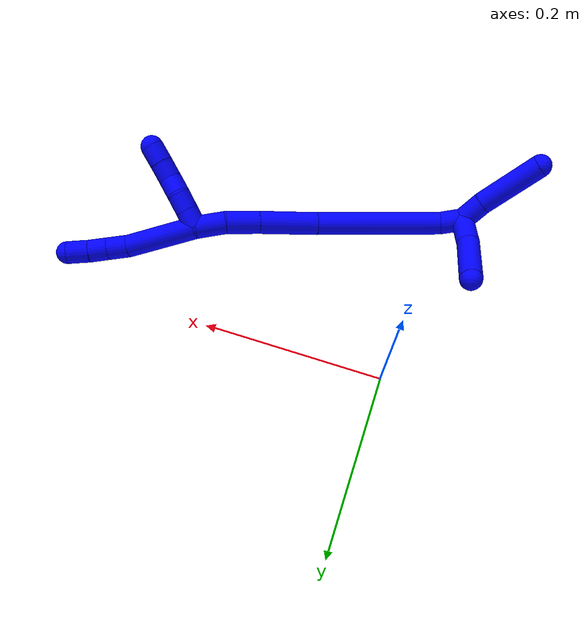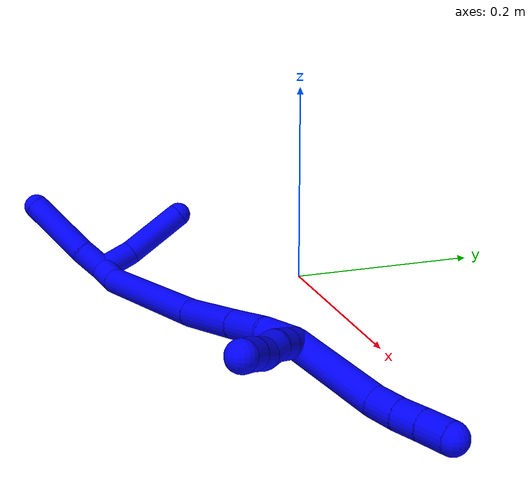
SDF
<sdf version="1.7">
 <world name="default">
  <model name="1">
   <static>0</static>
   <link name="1">
    <collision name="collision-cylinder-e_1_2_8">
     <pose>0.038566 0.002872 -0.012225 -2.91083 1.256 -2.82502</pose>
     <geometry><cylinder><radius>0.0125</radius><length>0.081119</length></cylinder></geometry>
     <surface>
      <friction><ode><mu>1.16</mu><mu2>1.16</mu2><slip1>0</slip1><slip2>0</slip2></ode></friction>
      <contact><ode><kp>1e+06</kp><kd>1</kd><max_vel>0</max_vel><min_depth>0.001</min_depth></ode></contact>
     </surface>
    </collision>
    <visual name="visual-cylinder-e_1_2_8">
     <pose>0.038566 0.002872 -0.012225 -2.91083 1.256 -2.82502</pose>
     <geometry><cylinder><radius>0.0125</radius><length>0.081119</length></cylinder></geometry>
     <material><ambient>0 0 1 1</ambient></material>
    </visual>
    <collision name="collision-cylinder-e_2_8_9">
     <pose>0.088056 0.008821 -0.027227 -2.30505 1.2082 -1.99724</pose>
     <geometry><cylinder><radius>0.0125</radius><length>0.023365</length></cylinder></geometry>
     <surface>
      <friction><ode><mu>1.16</mu><mu2>1.16</mu2><slip1>0</slip1><slip2>0</slip2></ode></friction>
      <contact><ode><kp>1e+06</kp><kd>1</kd><max_vel>0</max_vel><min_depth>0.001</min_depth></ode></contact>
     </surface>
    </collision>
    <visual name="visual-cylinder-e_2_8_9">
     <pose>0.088056 0.008821 -0.027227 -2.30505 1.2082 -1.99724</pose>
     <geometry><cylinder><radius>0.0125</radius><length>0.023365</length></cylinder></geometry>
     <material><ambient>0 0 1 1</ambient></material>
    </visual>
    <collision name="collision-cylinder-e_3_9_10">
     <pose>0.108628 0.01535 -0.032841 -2.25848 1.13703 -1.86763</pose>
     <geometry><cylinder><radius>0.0125</radius><length>0.021269</length></cylinder></geometry>
     <surface>
      <friction><ode><mu>1.16</mu><mu2>1.16</mu2><slip1>0</slip1><slip2>0</slip2></ode></friction>
      <contact><ode><kp>1e+06</kp><kd>1</kd><max_vel>0</max_vel><min_depth>0.001</min_depth></ode></contact>
     </surface>
    </collision>
    <visual name="visual-cylinder-e_3_9_10">
     <pose>0.108628 0.01535 -0.032841 -2.25848 1.13703 -1.86763</pose>
     <geometry><cylinder><radius>0.0125</radius><length>0.021269</length></cylinder></geometry>
     <material><ambient>0 0 1 1</ambient></material>
    </visual>
    <collision name="collision-cylinder-e_4_10_6">
     <pose>0.12939 0.022991 -0.038119 -2.09857 1.15953 -1.70118</pose>
     <geometry><cylinder><radius>0.0125</radius><length>0.024247</length></cylinder></geometry>
     <surface>
      <friction><ode><mu>1.16</mu><mu2>1.16</mu2><slip1>0</slip1><slip2>0</slip2></ode></friction>
      <contact><ode><kp>1e+06</kp><kd>1</kd><max_vel>0</max_vel><min_depth>0.001</min_depth></ode></contact>
     </surface>
    </collision>
    <visual name="visual-cylinder-e_4_10_6">
     <pose>0.12939 0.022991 -0.038119 -2.09857 1.15953 -1.70118</pose>
     <geometry><cylinder><radius>0.0125</radius><length>0.024247</length></cylinder></geometry>
     <material><ambient>0 0 1 1</ambient></material>
    </visual>
    <collision name="collision-cylinder-e_1_2_11">
     <pose>0.004496 0.004141 0.007915 -0.48203 0.466315 -0.116608</pose>
     <geometry><cylinder><radius>0.0125</radius><length>0.02</length></cylinder></geometry>
     <surface>
      <friction><ode><mu>1.16</mu><mu2>1.16</mu2><slip1>0</slip1><slip2>0</slip2></ode></friction>
      <contact><ode><kp>1e+06</kp><kd>1</kd><max_vel>0</max_vel><min_depth>0.001</min_depth></ode></contact>
     </surface>
    </collision>
    <visual name="visual-cylinder-e_1_2_11">
     <pose>0.004496 0.004141 0.007915 -0.48203 0.466315 -0.116608</pose>
     <geometry><cylinder><radius>0.0125</radius><length>0.02</length></cylinder></geometry>
     <material><ambient>0 0 1 1</ambient></material>
    </visual>
    <collision name="collision-cylinder-e_2_11_12">
     <pose>0.013501 0.012445 0.023724 -0.485265 0.467814 -0.11781</pose>
     <geometry><cylinder><radius>0.0125</radius><length>0.02</length></cylinder></geometry>
     <surface>
      <friction><ode><mu>1.16</mu><mu2>1.16</mu2><slip1>0</slip1><slip2>0</slip2></ode></friction>
      <contact><ode><kp>1e+06</kp><kd>1</kd><max_vel>0</max_vel><min_depth>0.001</min_depth></ode></contact>
     </surface>
    </collision>
    <visual name="visual-cylinder-e_2_11_12">
     <pose>0.013501 0.012445 0.023724 -0.485265 0.467814 -0.11781</pose>
     <geometry><cylinder><radius>0.0125</radius><length>0.02</length></cylinder></geometry>
     <material><ambient>0 0 1 1</ambient></material>
    </visual>
    <collision name="collision-cylinder-e_3_12_13">
     <pose>0.023566 0.01838 0.039744 -0.214751 0.588948 -0.06536</pose>
     <geometry><cylinder><radius>0.0125</radius><length>0.02</length></cylinder></geometry>
     <surface>
      <friction><ode><mu>1.16</mu><mu2>1.16</mu2><slip1>0</slip1><slip2>0</slip2></ode></friction>
      <contact><ode><kp>1e+06</kp><kd>1</kd><max_vel>0</max_vel><min_depth>0.001</min_depth></ode></contact>
     </surface>
    </collision>
    <visual name="visual-cylinder-e_3_12_13">
     <pose>0.023566 0.01838 0.039744 -0.214751 0.588948 -0.06536</pose>
     <geometry><cylinder><radius>0.0125</radius><length>0.02</length></cylinder></geometry>
     <material><ambient>0 0 1 1</ambient></material>
    </visual>
    <collision name="collision-cylinder-e_4_13_14">
     <pose>0.033601 0.024851 0.055473 -0.553454 0.464604 -0.134178</pose>
     <geometry><cylinder><radius>0.0125</radius><length>0.02</length></cylinder></geometry>
     <surface>
      <friction><ode><mu>1.16</mu><mu2>1.16</mu2><slip1>0</slip1><slip2>0</slip2></ode></friction>
      <contact><ode><kp>1e+06</kp><kd>1</kd><max_vel>0</max_vel><min_depth>0.001</min_depth></ode></contact>
     </surface>
    </collision>
    <visual name="visual-cylinder-e_4_13_14">
     <pose>0.033601 0.024851 0.055473 -0.553454 0.464604 -0.134178</pose>
     <geometry><cylinder><radius>0.0125</radius><length>0.02</length></cylinder></geometry>
     <material><ambient>0 0 1 1</ambient></material>
    </visual>
    <collision name="collision-cylinder-e_5_14_5">
     <pose>0.042974 0.033695 0.070752 -0.495225 0.511228 -0.131937</pose>
     <geometry><cylinder><radius>0.0125</radius><length>0.02</length></cylinder></geometry>
     <surface>
      <friction><ode><mu>1.16</mu><mu2>1.16</mu2><slip1>0</slip1><slip2>0</slip2></ode></friction>
      <contact><ode><kp>1e+06</kp><kd>1</kd><max_vel>0</max_vel><min_depth>0.001</min_depth></ode></contact>
     </surface>
    </collision>
    <visual name="visual-cylinder-e_5_14_5">
     <pose>0.042974 0.033695 0.070752 -0.495225 0.511228 -0.131937</pose>
     <geometry><cylinder><radius>0.0125</radius><length>0.02</length></cylinder></geometry>
     <material><ambient>0 0 1 1</ambient></material>
    </visual>
    <collision name="collision-cylinder-e_1_2_15">
     <pose>-0.014877 -0.005654 0.005049 0.84189 -1.09956 -0.535532</pose>
     <geometry><cylinder><radius>0.0125</radius><length>0.033394</length></cylinder></geometry>
     <surface>
      <friction><ode><mu>1.16</mu><mu2>1.16</mu2><slip1>0</slip1><slip2>0</slip2></ode></friction>
      <contact><ode><kp>1e+06</kp><kd>1</kd><max_vel>0</max_vel><min_depth>0.001</min_depth></ode></contact>
     </surface>
    </collision>
    <visual name="visual-cylinder-e_1_2_15">
     <pose>-0.014877 -0.005654 0.005049 0.84189 -1.09956 -0.535532</pose>
     <geometry><cylinder><radius>0.0125</radius><length>0.033394</length></cylinder></geometry>
     <material><ambient>0 0 1 1</ambient></material>
    </visual>
    <collision name="collision-cylinder-e_2_15_16">
     <pose>-0.045856 -0.020076 0.013594 1.1914 -1.04058 -0.740881</pose>
     <geometry><cylinder><radius>0.0125</radius><length>0.03733</length></cylinder></geometry>
     <surface>
      <friction><ode><mu>1.16</mu><mu2>1.16</mu2><slip1>0</slip1><slip2>0</slip2></ode></friction>
      <contact><ode><kp>1e+06</kp><kd>1</kd><max_vel>0</max_vel><min_depth>0.001</min_depth></ode></contact>
     </surface>
    </collision>
    <visual name="visual-cylinder-e_2_15_16">
     <pose>-0.045856 -0.020076 0.013594 1.1914 -1.04058 -0.740881</pose>
     <geometry><cylinder><radius>0.0125</radius><length>0.03733</length></cylinder></geometry>
     <material><ambient>0 0 1 1</ambient></material>
    </visual>
    <collision name="collision-cylinder-e_3_16_17">
     <pose>-0.090257 -0.043986 0.022244 1.2427 -1.05634 -0.791394</pose>
     <geometry><cylinder><radius>0.0125</radius><length>0.065013</length></cylinder></geometry>
     <surface>
      <friction><ode><mu>1.16</mu><mu2>1.16</mu2><slip1>0</slip1><slip2>0</slip2></ode></friction>
      <contact><ode><kp>1e+06</kp><kd>1</kd><max_vel>0</max_vel><min_depth>0.001</min_depth></ode></contact>
     </surface>
    </collision>
    <visual name="visual-cylinder-e_3_16_17">
     <pose>-0.090257 -0.043986 0.022244 1.2427 -1.05634 -0.791394</pose>
     <geometry><cylinder><radius>0.0125</radius><length>0.065013</length></cylinder></geometry>
     <material><ambient>0 0 1 1</ambient></material>
    </visual>
    <collision name="collision-cylinder-e_4_17_18">
     <pose>-0.181755 -0.086184 0.038152 1.19248 -1.13909 -0.819856</pose>
     <geometry><cylinder><radius>0.0125</radius><length>0.139166</length></cylinder></geometry>
     <surface>
      <friction><ode><mu>1.16</mu><mu2>1.16</mu2><slip1>0</slip1><slip2>0</slip2></ode></friction>
      <contact><ode><kp>1e+06</kp><kd>1</kd><max_vel>0</max_vel><min_depth>0.001</min_depth></ode></contact>
     </surface>
    </collision>
    <visual name="visual-cylinder-e_4_17_18">
     <pose>-0.181755 -0.086184 0.038152 1.19248 -1.13909 -0.819856</pose>
     <geometry><cylinder><radius>0.0125</radius><length>0.139166</length></cylinder></geometry>
     <material><ambient>0 0 1 1</ambient></material>
    </visual>
    <collision name="collision-cylinder-e_5_18_1">
     <pose>-0.25722 -0.114267 0.05135 0.397817 -1.35792 -0.322492</pose>
     <geometry><cylinder><radius>0.0125</radius><length>0.025098</length></cylinder></geometry>
     <surface>
      <friction><ode><mu>1.16</mu><mu2>1.16</mu2><slip1>0</slip1><slip2>0</slip2></ode></friction>
      <contact><ode><kp>1e+06</kp><kd>1</kd><max_vel>0</max_vel><min_depth>0.001</min_depth></ode></contact>
     </surface>
    </collision>
    <visual name="visual-cylinder-e_5_18_1">
     <pose>-0.25722 -0.114267 0.05135 0.397817 -1.35792 -0.322492</pose>
     <geometry><cylinder><radius>0.0125</radius><length>0.025098</length></cylinder></geometry>
     <material><ambient>0 0 1 1</ambient></material>
    </visual>
    <collision name="collision-cylinder-e_1_1_19">
     <pose>-0.280321 -0.111412 0.062035 -0.440173 -0.87172 0.207629</pose>
     <geometry><cylinder><radius>0.0125</radius><length>0.028312</length></cylinder></geometry>
     <surface>
      <friction><ode><mu>1.16</mu><mu2>1.16</mu2><slip1>0</slip1><slip2>0</slip2></ode></friction>
      <contact><ode><kp>1e+06</kp><kd>1</kd><max_vel>0</max_vel><min_depth>0.001</min_depth></ode></contact>
     </surface>
    </collision>
    <visual name="visual-cylinder-e_1_1_19">
     <pose>-0.280321 -0.111412 0.062035 -0.440173 -0.87172 0.207629</pose>
     <geometry><cylinder><radius>0.0125</radius><length>0.028312</length></cylinder></geometry>
     <material><ambient>0 0 1 1</ambient></material>
    </visual>
    <collision name="collision-cylinder-e_2_19_4">
     <pose>-0.321304 -0.098415 0.087388 -0.4895 -0.999278 0.270981</pose>
     <geometry><cylinder><radius>0.0125</radius><length>0.071688</length></cylinder></geometry>
     <surface>
      <friction><ode><mu>1.16</mu><mu2>1.16</mu2><slip1>0</slip1><slip2>0</slip2></ode></friction>
      <contact><ode><kp>1e+06</kp><kd>1</kd><max_vel>0</max_vel><min_depth>0.001</min_depth></ode></contact>
     </surface>
    </collision>
    <visual name="visual-cylinder-e_2_19_4">
     <pose>-0.321304 -0.098415 0.087388 -0.4895 -0.999278 0.270981</pose>
     <geometry><cylinder><radius>0.0125</radius><length>0.071688</length></cylinder></geometry>
     <material><ambient>0 0 1 1</ambient></material>
    </visual>
    <collision name="collision-cylinder-e_1_1_20">
     <pose>-0.274915 -0.110162 0.03788 -2.82964 -0.31398 1.57737</pose>
     <geometry><cylinder><radius>0.0125</radius><length>0.035161</length></cylinder></geometry>
     <surface>
      <friction><ode><mu>1.16</mu><mu2>1.16</mu2><slip1>0</slip1><slip2>0</slip2></ode></friction>
      <contact><ode><kp>1e+06</kp><kd>1</kd><max_vel>0</max_vel><min_depth>0.001</min_depth></ode></contact>
     </surface>
    </collision>
    <visual name="visual-cylinder-e_1_1_20">
     <pose>-0.274915 -0.110162 0.03788 -2.82964 -0.31398 1.57737</pose>
     <geometry><cylinder><radius>0.0125</radius><length>0.035161</length></cylinder></geometry>
     <material><ambient>0 0 1 1</ambient></material>
    </visual>
    <collision name="collision-cylinder-e_2_20_3">
     <pose>-0.286791 -0.086485 -0.003832 -2.51833 -0.200161 0.60436</pose>
     <geometry><cylinder><radius>0.0125</radius><length>0.064839</length></cylinder></geometry>
     <surface>
      <friction><ode><mu>1.16</mu><mu2>1.16</mu2><slip1>0</slip1><slip2>0</slip2></ode></friction>
      <contact><ode><kp>1e+06</kp><kd>1</kd><max_vel>0</max_vel><min_depth>0.001</min_depth></ode></contact>
     </surface>
    </collision>
    <visual name="visual-cylinder-e_2_20_3">
     <pose>-0.286791 -0.086485 -0.003832 -2.51833 -0.200161 0.60436</pose>
     <geometry><cylinder><radius>0.0125</radius><length>0.064839</length></cylinder></geometry>
     <material><ambient>0 0 1 1</ambient></material>
    </visual>
    <collision name="collision-sphere-3">
     <pose>-0.293237 -0.067939 -0.02963 0 -0 0</pose>
     <geometry><sphere><radius>0.0125</radius></sphere></geometry>
     <surface>
      <friction><ode><mu>1.16</mu><mu2>1.16</mu2><slip1>0</slip1><slip2>0</slip2></ode></friction>
      <contact><ode><kp>1e+06</kp><kd>1</kd><max_vel>0</max_vel><min_depth>0.001</min_depth></ode></contact>
     </surface>
    </collision>
    <visual name="visual-sphere-3">
     <pose>-0.293237 -0.067939 -0.02963 0 -0 0</pose>
     <geometry><sphere><radius>0.0125</radius></sphere></geometry>
     <material><ambient>0 0 1 1</ambient></material>
    </visual>
    <collision name="collision-sphere-20">
     <pose>-0.280345 -0.10503 0.021967 0 -0 0</pose>
     <geometry><sphere><radius>0.0125</radius></sphere></geometry>
     <surface>
      <friction><ode><mu>1.16</mu><mu2>1.16</mu2><slip1>0</slip1><slip2>0</slip2></ode></friction>
      <contact><ode><kp>1e+06</kp><kd>1</kd><max_vel>0</max_vel><min_depth>0.001</min_depth></ode></contact>
     </surface>
    </collision>
    <visual name="visual-sphere-20">
     <pose>-0.280345 -0.10503 0.021967 0 -0 0</pose>
     <geometry><sphere><radius>0.0125</radius></sphere></geometry>
     <material><ambient>0 0 1 1</ambient></material>
    </visual>
    <collision name="collision-sphere-4">
     <pose>-0.351452 -0.089298 0.1045 0 -0 0</pose>
     <geometry><sphere><radius>0.0125</radius></sphere></geometry>
     <surface>
      <friction><ode><mu>1.16</mu><mu2>1.16</mu2><slip1>0</slip1><slip2>0</slip2></ode></friction>
      <contact><ode><kp>1e+06</kp><kd>1</kd><max_vel>0</max_vel><min_depth>0.001</min_depth></ode></contact>
     </surface>
    </collision>
    <visual name="visual-sphere-4">
     <pose>-0.351452 -0.089298 0.1045 0 -0 0</pose>
     <geometry><sphere><radius>0.0125</radius></sphere></geometry>
     <material><ambient>0 0 1 1</ambient></material>
    </visual>
    <collision name="collision-sphere-11">
     <pose>0.008992 0.008282 0.015829 0 -0 0</pose>
     <geometry><sphere><radius>0.0125</radius></sphere></geometry>
     <surface>
      <friction><ode><mu>1.16</mu><mu2>1.16</mu2><slip1>0</slip1><slip2>0</slip2></ode></friction>
      <contact><ode><kp>1e+06</kp><kd>1</kd><max_vel>0</max_vel><min_depth>0.001</min_depth></ode></contact>
     </surface>
    </collision>
    <visual name="visual-sphere-11">
     <pose>0.008992 0.008282 0.015829 0 -0 0</pose>
     <geometry><sphere><radius>0.0125</radius></sphere></geometry>
     <material><ambient>0 0 1 1</ambient></material>
    </visual>
    <collision name="collision-sphere-6">
     <pose>0.140503 0.027178 -0.040559 0 -0 0</pose>
     <geometry><sphere><radius>0.0125</radius></sphere></geometry>
     <surface>
      <friction><ode><mu>1.16</mu><mu2>1.16</mu2><slip1>0</slip1><slip2>0</slip2></ode></friction>
      <contact><ode><kp>1e+06</kp><kd>1</kd><max_vel>0</max_vel><min_depth>0.001</min_depth></ode></contact>
     </surface>
    </collision>
    <visual name="visual-sphere-6">
     <pose>0.140503 0.027178 -0.040559 0 -0 0</pose>
     <geometry><sphere><radius>0.0125</radius></sphere></geometry>
     <material><ambient>0 0 1 1</ambient></material>
    </visual>
    <collision name="collision-sphere-10">
     <pose>0.118278 0.018804 -0.035678 0 -0 0</pose>
     <geometry><sphere><radius>0.0125</radius></sphere></geometry>
     <surface>
      <friction><ode><mu>1.16</mu><mu2>1.16</mu2><slip1>0</slip1><slip2>0</slip2></ode></friction>
      <contact><ode><kp>1e+06</kp><kd>1</kd><max_vel>0</max_vel><min_depth>0.001</min_depth></ode></contact>
     </surface>
    </collision>
    <visual name="visual-sphere-10">
     <pose>0.118278 0.018804 -0.035678 0 -0 0</pose>
     <geometry><sphere><radius>0.0125</radius></sphere></geometry>
     <material><ambient>0 0 1 1</ambient></material>
    </visual>
    <collision name="collision-sphere-9">
     <pose>0.098978 0.011897 -0.030004 0 -0 0</pose>
     <geometry><sphere><radius>0.0125</radius></sphere></geometry>
     <surface>
      <friction><ode><mu>1.16</mu><mu2>1.16</mu2><slip1>0</slip1><slip2>0</slip2></ode></friction>
      <contact><ode><kp>1e+06</kp><kd>1</kd><max_vel>0</max_vel><min_depth>0.001</min_depth></ode></contact>
     </surface>
    </collision>
    <visual name="visual-sphere-9">
     <pose>0.098978 0.011897 -0.030004 0 -0 0</pose>
     <geometry><sphere><radius>0.0125</radius></sphere></geometry>
     <material><ambient>0 0 1 1</ambient></material>
    </visual>
    <collision name="collision-sphere-2">
     <geometry><sphere><radius>0.0125</radius></sphere></geometry>
     <surface>
      <friction><ode><mu>1.16</mu><mu2>1.16</mu2><slip1>0</slip1><slip2>0</slip2></ode></friction>
      <contact><ode><kp>1e+06</kp><kd>1</kd><max_vel>0</max_vel><min_depth>0.001</min_depth></ode></contact>
     </surface>
    </collision>
    <visual name="visual-sphere-2">
     <geometry><sphere><radius>0.0125</radius></sphere></geometry>
     <material><ambient>0 0 1 1</ambient></material>
    </visual>
    <collision name="collision-sphere-19">
     <pose>-0.291157 -0.107531 0.070277 0 -0 0</pose>
     <geometry><sphere><radius>0.0125</radius></sphere></geometry>
     <surface>
      <friction><ode><mu>1.16</mu><mu2>1.16</mu2><slip1>0</slip1><slip2>0</slip2></ode></friction>
      <contact><ode><kp>1e+06</kp><kd>1</kd><max_vel>0</max_vel><min_depth>0.001</min_depth></ode></contact>
     </surface>
    </collision>
    <visual name="visual-sphere-19">
     <pose>-0.291157 -0.107531 0.070277 0 -0 0</pose>
     <geometry><sphere><radius>0.0125</radius></sphere></geometry>
     <material><ambient>0 0 1 1</ambient></material>
    </visual>
    <collision name="collision-sphere-8">
     <pose>0.077133 0.005745 -0.024451 0 -0 0</pose>
     <geometry><sphere><radius>0.0125</radius></sphere></geometry>
     <surface>
      <friction><ode><mu>1.16</mu><mu2>1.16</mu2><slip1>0</slip1><slip2>0</slip2></ode></friction>
      <contact><ode><kp>1e+06</kp><kd>1</kd><max_vel>0</max_vel><min_depth>0.001</min_depth></ode></contact>
     </surface>
    </collision>
    <visual name="visual-sphere-8">
     <pose>0.077133 0.005745 -0.024451 0 -0 0</pose>
     <geometry><sphere><radius>0.0125</radius></sphere></geometry>
     <material><ambient>0 0 1 1</ambient></material>
    </visual>
    <collision name="collision-sphere-12">
     <pose>0.018011 0.016608 0.031619 0 -0 0</pose>
     <geometry><sphere><radius>0.0125</radius></sphere></geometry>
     <surface>
      <friction><ode><mu>1.16</mu><mu2>1.16</mu2><slip1>0</slip1><slip2>0</slip2></ode></friction>
      <contact><ode><kp>1e+06</kp><kd>1</kd><max_vel>0</max_vel><min_depth>0.001</min_depth></ode></contact>
     </surface>
    </collision>
    <visual name="visual-sphere-12">
     <pose>0.018011 0.016608 0.031619 0 -0 0</pose>
     <geometry><sphere><radius>0.0125</radius></sphere></geometry>
     <material><ambient>0 0 1 1</ambient></material>
    </visual>
    <collision name="collision-sphere-13">
     <pose>0.02912 0.020152 0.047868 0 -0 0</pose>
     <geometry><sphere><radius>0.0125</radius></sphere></geometry>
     <surface>
      <friction><ode><mu>1.16</mu><mu2>1.16</mu2><slip1>0</slip1><slip2>0</slip2></ode></friction>
      <contact><ode><kp>1e+06</kp><kd>1</kd><max_vel>0</max_vel><min_depth>0.001</min_depth></ode></contact>
     </surface>
    </collision>
    <visual name="visual-sphere-13">
     <pose>0.02912 0.020152 0.047868 0 -0 0</pose>
     <geometry><sphere><radius>0.0125</radius></sphere></geometry>
     <material><ambient>0 0 1 1</ambient></material>
    </visual>
    <collision name="collision-sphere-14">
     <pose>0.038082 0.02955 0.063079 0 -0 0</pose>
     <geometry><sphere><radius>0.0125</radius></sphere></geometry>
     <surface>
      <friction><ode><mu>1.16</mu><mu2>1.16</mu2><slip1>0</slip1><slip2>0</slip2></ode></friction>
      <contact><ode><kp>1e+06</kp><kd>1</kd><max_vel>0</max_vel><min_depth>0.001</min_depth></ode></contact>
     </surface>
    </collision>
    <visual name="visual-sphere-14">
     <pose>0.038082 0.02955 0.063079 0 -0 0</pose>
     <geometry><sphere><radius>0.0125</radius></sphere></geometry>
     <material><ambient>0 0 1 1</ambient></material>
    </visual>
    <collision name="collision-sphere-5">
     <pose>0.047867 0.03784 0.078426 0 -0 0</pose>
     <geometry><sphere><radius>0.0125</radius></sphere></geometry>
     <surface>
      <friction><ode><mu>1.16</mu><mu2>1.16</mu2><slip1>0</slip1><slip2>0</slip2></ode></friction>
      <contact><ode><kp>1e+06</kp><kd>1</kd><max_vel>0</max_vel><min_depth>0.001</min_depth></ode></contact>
     </surface>
    </collision>
    <visual name="visual-sphere-5">
     <pose>0.047867 0.03784 0.078426 0 -0 0</pose>
     <geometry><sphere><radius>0.0125</radius></sphere></geometry>
     <material><ambient>0 0 1 1</ambient></material>
    </visual>
    <collision name="collision-sphere-15">
     <pose>-0.029754 -0.011308 0.010098 0 -0 0</pose>
     <geometry><sphere><radius>0.0125</radius></sphere></geometry>
     <surface>
      <friction><ode><mu>1.16</mu><mu2>1.16</mu2><slip1>0</slip1><slip2>0</slip2></ode></friction>
      <contact><ode><kp>1e+06</kp><kd>1</kd><max_vel>0</max_vel><min_depth>0.001</min_depth></ode></contact>
     </surface>
    </collision>
    <visual name="visual-sphere-15">
     <pose>-0.029754 -0.011308 0.010098 0 -0 0</pose>
     <geometry><sphere><radius>0.0125</radius></sphere></geometry>
     <material><ambient>0 0 1 1</ambient></material>
    </visual>
    <collision name="collision-sphere-16">
     <pose>-0.061958 -0.028844 0.017089 0 -0 0</pose>
     <geometry><sphere><radius>0.0125</radius></sphere></geometry>
     <surface>
      <friction><ode><mu>1.16</mu><mu2>1.16</mu2><slip1>0</slip1><slip2>0</slip2></ode></friction>
      <contact><ode><kp>1e+06</kp><kd>1</kd><max_vel>0</max_vel><min_depth>0.001</min_depth></ode></contact>
     </surface>
    </collision>
    <visual name="visual-sphere-16">
     <pose>-0.061958 -0.028844 0.017089 0 -0 0</pose>
     <geometry><sphere><radius>0.0125</radius></sphere></geometry>
     <material><ambient>0 0 1 1</ambient></material>
    </visual>
    <collision name="collision-sphere-17">
     <pose>-0.118556 -0.059128 0.027398 0 -0 0</pose>
     <geometry><sphere><radius>0.0125</radius></sphere></geometry>
     <surface>
      <friction><ode><mu>1.16</mu><mu2>1.16</mu2><slip1>0</slip1><slip2>0</slip2></ode></friction>
      <contact><ode><kp>1e+06</kp><kd>1</kd><max_vel>0</max_vel><min_depth>0.001</min_depth></ode></contact>
     </surface>
    </collision>
    <visual name="visual-sphere-17">
     <pose>-0.118556 -0.059128 0.027398 0 -0 0</pose>
     <geometry><sphere><radius>0.0125</radius></sphere></geometry>
     <material><ambient>0 0 1 1</ambient></material>
    </visual>
    <collision name="collision-sphere-18">
     <pose>-0.244954 -0.11324 0.048906 0 -0 0</pose>
     <geometry><sphere><radius>0.0125</radius></sphere></geometry>
     <surface>
      <friction><ode><mu>1.16</mu><mu2>1.16</mu2><slip1>0</slip1><slip2>0</slip2></ode></friction>
      <contact><ode><kp>1e+06</kp><kd>1</kd><max_vel>0</max_vel><min_depth>0.001</min_depth></ode></contact>
     </surface>
    </collision>
    <visual name="visual-sphere-18">
     <pose>-0.244954 -0.11324 0.048906 0 -0 0</pose>
     <geometry><sphere><radius>0.0125</radius></sphere></geometry>
     <material><ambient>0 0 1 1</ambient></material>
    </visual>
    <collision name="collision-sphere-1">
     <pose>-0.269485 -0.115294 0.053794 0 -0 0</pose>
     <geometry><sphere><radius>0.0125</radius></sphere></geometry>
     <surface>
      <friction><ode><mu>1.16</mu><mu2>1.16</mu2><slip1>0</slip1><slip2>0</slip2></ode></friction>
      <contact><ode><kp>1e+06</kp><kd>1</kd><max_vel>0</max_vel><min_depth>0.001</min_depth></ode></contact>
     </surface>
    </collision>
    <visual name="visual-sphere-1">
     <pose>-0.269485 -0.115294 0.053794 0 -0 0</pose>
     <geometry><sphere><radius>0.0125</radius></sphere></geometry>
     <material><ambient>0 0 1 1</ambient></material>
    </visual>
    <inertial>
     <pose>-0.114749 -0.046876 0.024702 0 -0 0</pose>
     <mass>0.75</mass>
     <inertia><ixx>3e-05</ixx><ixy>0</ixy><ixz>0</ixz><iyy>0.000247</iyy><iyz>0</iyz><izz>0.000302</izz></inertia>
    </inertial>
   </link>
   <pose>0.241534 -0.093639 0.035276 1.46787 0.327839 0.146367</pose>
  </model>
 </world>
</sdf>
